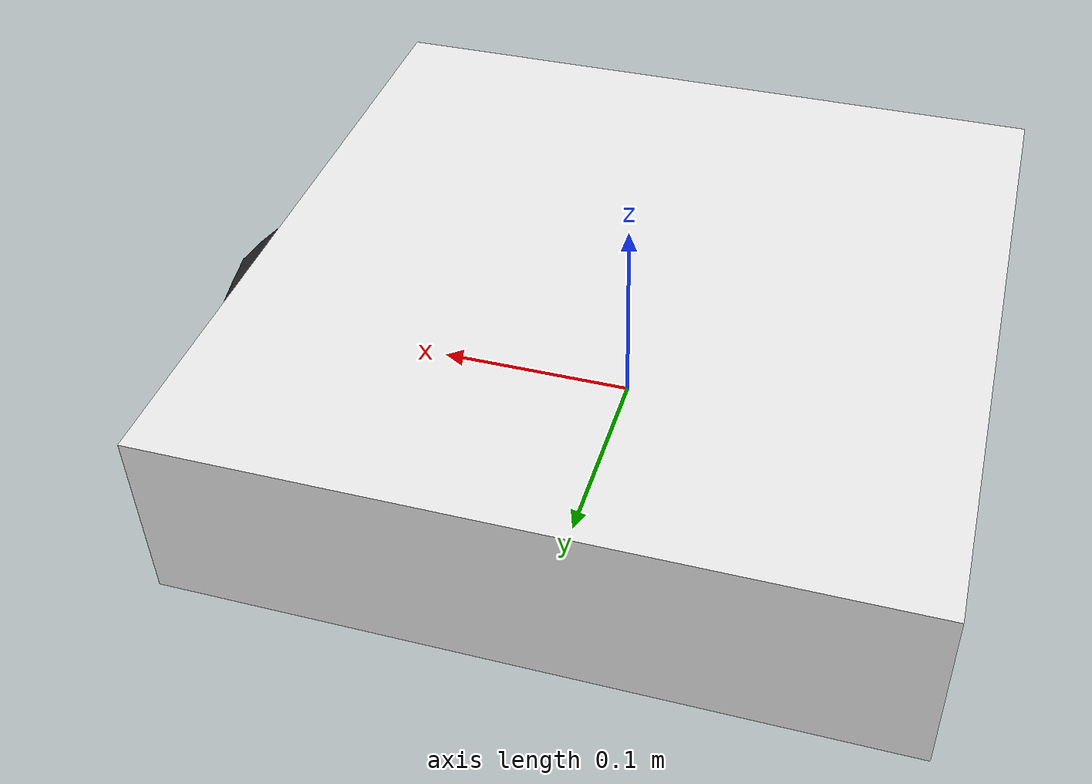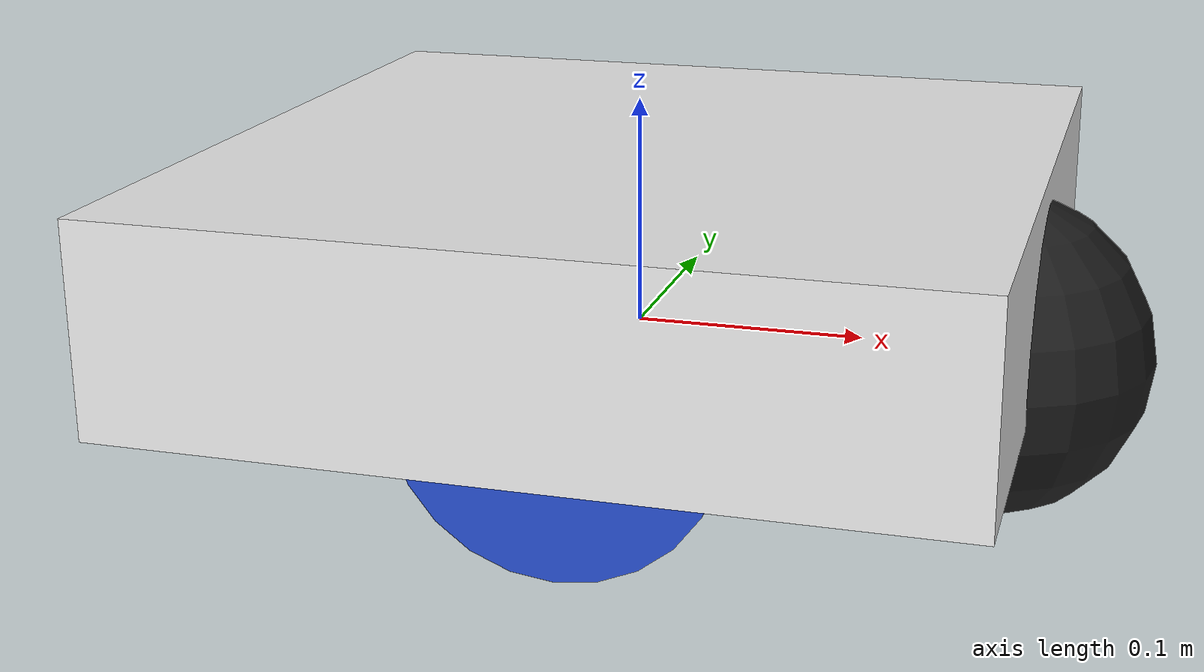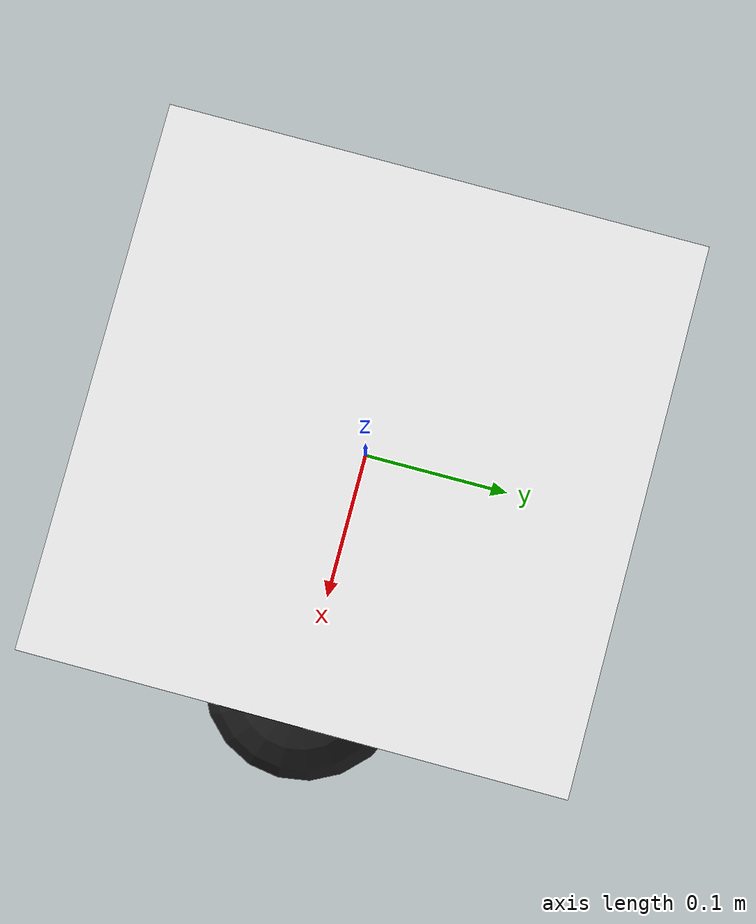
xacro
<?xml version="1.0"?>
<robot xmlns:xacro="http://www.ros.org/wiki/xacro">

  <xacro:include filename="../properties/core.xacro" />
  <xacro:include filename="../macros/inertial.xacro" />

  <!-- =========================== Robot core description =========================== -->
  <!-- ================== Base ================== -->
  <!-- ========= Link ========= -->
  <link name="base_link" />

  <!-- ================== Base footprint ================== -->
  <!-- ========= Link ========= -->
  <link name="base_footprint" />

  <!-- ========= Joint ========= -->
  <joint name="base_footprint_joint" type="fixed">
    <parent link="base_link" />
    <child link="base_footprint" />
  </joint>

  <!-- ================== Chassis ================== -->
  <!-- ========= Link ========= -->
  <link name="chassis">
    <visual>
      <origin xyz="${chassis_to_origin_offset_x} ${chassis_to_origin_offset_y} ${chassis_to_origin_offset_z}" />
      <geometry>
        <box size="${chassis_size_x} ${chassis_size_y} ${chassis_size_z}" />
      </geometry>
      <material name="${chassis_material}" />
    </visual>

    <collision>
      <origin xyz="${chassis_to_origin_offset_x} ${chassis_to_origin_offset_y} ${chassis_to_origin_offset_z}" />
      <geometry>
        <box size="${chassis_size_x} ${chassis_size_y} ${chassis_size_z}" />
      </geometry>
    </collision>

    <xacro:inertial_box
      mass="${chassis_mass}"
      x="${chassis_size_x}" y="${chassis_size_y}" z="${chassis_size_z}"
    >
      <xacro:inertial_origin xyz="${chassis_to_origin_offset_x} ${chassis_to_origin_offset_y} ${chassis_to_origin_offset_z}" />
    </xacro:inertial_box>
  </link>

  <!-- ========= Joint ========= -->
  <joint name="chassis_joint" type="fixed">
    <parent link="base_link" />
    <child link="chassis" />
    <origin xyz="${base_to_chassis_joint_x} ${base_to_chassis_joint_y} ${base_to_chassis_joint_z}" />
  </joint>

  <!-- ========= Gazebo ========= -->
  <gazebo reference="chassis">
    <material>${chassis_gazebo_material}</material>
  </gazebo>

  <!-- ================== Left wheel ================== -->
  <!-- ========= Link ========= -->
  <link name="left_wheel">
    <visual>
      <geometry>
        <cylinder radius="${left_wheel_size_xy}" length="${left_wheel_size_z}" />
      </geometry>
      <material name="${left_wheel_material}" />
    </visual>

    <collision>
      <geometry>
        <cylinder radius="${left_wheel_size_xy}" length="${left_wheel_size_z}" />
      </geometry>
    </collision>

    <xacro:inertial_cylinder
      mass="${left_wheel_mass}"
      radius="${left_wheel_size_xy}" length="${left_wheel_size_z}"
    >
      <xacro:inertial_origin />
    </xacro:inertial_cylinder>
  </link>

    <!-- ========= Joint ========= -->
  <joint name="left_wheel_joint" type="continuous">
    <parent link="base_link" />
    <child link="left_wheel" />
    <origin
      xyz="${base_to_left_wheel_joint_x} ${base_to_left_wheel_joint_y} ${base_to_left_wheel_joint_z}"
      rpy="${base_to_left_wheel_joint_roll} ${base_to_left_wheel_joint_pitch} ${base_to_left_wheel_joint_yaw}"
    />
    <axis xyz="${left_wheel_rotate_x} ${left_wheel_rotate_y} ${left_wheel_rotate_z}" />
  </joint>

  <!-- ========= Gazebo ========= -->
  <gazebo reference="left_wheel">
    <material>${left_wheel_gazebo_material}</material>
  </gazebo>

  <!-- ================== Right wheel ================== -->
  <!-- ========= Link ========= -->
  <link name="right_wheel">
    <visual>
      <geometry>
        <cylinder radius="${right_wheel_size_xy}" length="${right_wheel_size_z}" />
      </geometry>
      <material name="${right_wheel_material}" />
    </visual>

    <collision>
      <geometry>
        <cylinder radius="${right_wheel_size_xy}" length="${right_wheel_size_z}" />
      </geometry>
    </collision>

    <xacro:inertial_cylinder
      mass="${right_wheel_mass}"
      radius="${right_wheel_size_xy}" length="${right_wheel_size_z}"
    >
      <xacro:inertial_origin />
    </xacro:inertial_cylinder>
  </link>

  <!-- ========= Joint ========= -->
  <joint name="right_wheel_joint" type="continuous">
    <parent link="base_link" />
    <child link="right_wheel" />
    <origin
      xyz="${base_to_right_wheel_joint_x} ${base_to_right_wheel_joint_y} ${base_to_right_wheel_joint_z}"
      rpy="${base_to_right_wheel_joint_roll} ${base_to_right_wheel_joint_pitch} ${base_to_right_wheel_joint_yaw}"
    />
    <axis xyz="${right_wheel_rotate_x} ${right_wheel_rotate_y} ${right_wheel_rotate_z}" />
  </joint>

  <!-- ========= Gazebo ========= -->
  <gazebo reference="right_wheel">
    <material>${right_wheel_gazebo_material}</material>
  </gazebo>

  <!-- ================== Caster wheel ================== -->
  <!-- ========= Link ========= -->
  <link name="caster_wheel">
    <visual>
      <geometry>
        <sphere radius="${caster_wheel_size_xyz}" />
      </geometry>
      <material name="${caster_wheel_material}" />
    </visual>

    <collision>
      <geometry>
        <sphere radius="${caster_wheel_size_xyz}" />
      </geometry>
    </collision>

    <xacro:inertial_sphere
      mass="${caster_wheel_mass}"
      radius="${caster_wheel_size_xyz}"
    >
      <xacro:inertial_origin />
    </xacro:inertial_sphere>
  </link>

  <!-- ========= Joint ========= -->
  <joint name="caster_wheel_joint" type="fixed">
    <parent link="base_link" />
    <child link="caster_wheel" />
    <origin xyz="${base_to_caster_wheel_joint_x} ${base_to_caster_wheel_joint_y} ${base_to_caster_wheel_joint_z}" />
  </joint>

  <!-- ========= Gazebo ========= -->
  <gazebo reference="caster_wheel">
    <material>${caster_wheel_gazebo_material}</material>
    <mu1 value="0.001" />
    <mu2 value="0.001" />
  </gazebo>

</robot>

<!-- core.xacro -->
<robot xmlns:xacro="http://www.ros.org/wiki/xacro">

  <!-- =========================== Robot core properties =========================== -->
  <!-- ================== Chassis ================== -->
  <!-- ========= Dimensions ========= -->
  <xacro:property name="chassis_size_x" value="0.353" />
  <xacro:property name="chassis_size_y" value="0.350" />
  <xacro:property name="chassis_size_z" value="0.090" />

  <!-- ========= Origin ========= -->
  <xacro:property name="chassis_to_origin_offset_x" value="0" />
  <xacro:property name="chassis_to_origin_offset_y" value="0" />
  <xacro:property name="chassis_to_origin_offset_z" value="0" />

  <!-- ========= Joint offsets ========= -->
  <xacro:property name="base_to_chassis_joint_x" value="0" />
  <xacro:property name="base_to_chassis_joint_y" value="0" />
  <xacro:property name="base_to_chassis_joint_z" value="0.035" />

  <!-- ========= Material ========= -->
  <xacro:property name="chassis_material" value="white" />

  <!-- ========= Inertial ========= -->
  <xacro:property name="chassis_mass" value="2.0" />

  <!-- ========= Gazebo ========= -->
  <xacro:property name="chassis_gazebo_material" value="Gazebo/White" />

  <!-- ================== Left wheel ================== -->
  <!-- ========= Dimensions ========= -->
  <xacro:property name="left_wheel_size_xy" value="0.07" />
  <xacro:property name="left_wheel_size_z" value="0.014" />

  <!-- ========= Joint offsets ========= -->
  <xacro:property name="base_to_left_wheel_joint_x" value="0" />
  <xacro:property name="base_to_left_wheel_joint_y" value="0.1186" />
  <xacro:property name="base_to_left_wheel_joint_z" value="0" />

  <xacro:property name="base_to_left_wheel_joint_roll" value="${-pi / 2}" />
  <xacro:property name="base_to_left_wheel_joint_pitch" value="0" />
  <xacro:property name="base_to_left_wheel_joint_yaw" value="0" />

  <!-- ========= Axis of rotation ========= -->
  <xacro:property name="left_wheel_rotate_x" value="0" />
  <xacro:property name="left_wheel_rotate_y" value="0" />
  <xacro:property name="left_wheel_rotate_z" value="1" />

  <!-- ========= Material ========= -->
  <xacro:property name="left_wheel_material" value="blue" />

  <!-- ========= Inertial ========= -->
  <xacro:property name="left_wheel_mass" value="0.1" />

  <!-- ========= Gazebo ========= -->
  <xacro:property name="left_wheel_gazebo_material" value="Gazebo/Blue" />

  <!-- ================== Right wheel ================== -->
  <!-- ========= Dimensions ========= -->
  <xacro:property name="right_wheel_size_xy" value="${left_wheel_size_xy}" />
  <xacro:property name="right_wheel_size_z" value="${left_wheel_size_z}" />

  <!-- ========= Joint offsets ========= -->
  <xacro:property name="base_to_right_wheel_joint_x" value="${-base_to_left_wheel_joint_x}" />
  <xacro:property name="base_to_right_wheel_joint_y" value="${-base_to_left_wheel_joint_y}" />
  <xacro:property name="base_to_right_wheel_joint_z" value="${base_to_left_wheel_joint_z}" />
  <xacro:property name="base_to_right_wheel_joint_roll" value="${-base_to_left_wheel_joint_roll}" />
  <xacro:property name="base_to_right_wheel_joint_pitch" value="${base_to_left_wheel_joint_pitch}" />
  <xacro:property name="base_to_right_wheel_joint_yaw" value="${-base_to_left_wheel_joint_pitch}" />

  <!-- ========= Axis of rotation ========= -->
  <xacro:property name="right_wheel_rotate_x" value="${left_wheel_rotate_x}" />
  <xacro:property name="right_wheel_rotate_y" value="${left_wheel_rotate_y}" />
  <xacro:property name="right_wheel_rotate_z" value="-${left_wheel_rotate_z}" />

  <!-- ========= Material ========= -->
  <xacro:property name="right_wheel_material" value="${left_wheel_material}" />

  <!-- ========= Inertial ========= -->
  <xacro:property name="right_wheel_mass" value="${left_wheel_mass}" />

  <!-- ========= Gazebo ========= -->
  <xacro:property name="right_wheel_gazebo_material" value="${left_wheel_gazebo_material}" />

  <!-- ================== Caster wheel ================== -->
  <!-- ========= Dimensions ========= -->
  <xacro:property name="caster_wheel_size_xyz" value="0.07" />

  <!-- ========= Joint offsets ========= -->
  <xacro:property name="base_to_caster_wheel_joint_x" value="0.154" />
  <xacro:property name="base_to_caster_wheel_joint_y" value="0" />
  <xacro:property name="base_to_caster_wheel_joint_z" value="0" />

  <!-- ========= Material ========= -->
  <xacro:property name="caster_wheel_material" value="black" />

  <!-- ========= Inertial ========= -->
  <xacro:property name="caster_wheel_mass" value="0.1" />

  <!-- ========= Gazebo ========= -->
  <xacro:property name="caster_wheel_gazebo_material" value="Gazebo/Black" />

</robot>

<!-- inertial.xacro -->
<robot xmlns:xacro="http://www.ros.org/wiki/xacro" >

    <!-- Specify some standard inertial calculations https://en.wikipedia.org/wiki/List_of_moments_of_inertia -->
    <!-- These make use of xacro's mathematical functionality -->
    <!-- Unit of mass: kg -->

    <xacro:macro name="inertial_origin" params="xyz:='0 0 0' rpy:='0 0 0'">
      <origin xyz="${xyz}" rpy="${rpy}"/>
    </xacro:macro>

    <xacro:macro name="inertial_sphere" params="mass radius *origin">
      <inertial>
        <xacro:insert_block name="origin"/>
        <mass value="${mass}" />
        <inertia
          ixx="${(2/5) * mass * (radius*radius)}" ixy="0.0" ixz="0.0"
          iyy="${(2/5) * mass * (radius*radius)}" iyz="0.0"
          izz="${(2/5) * mass * (radius*radius)}"
        />
      </inertial>
    </xacro:macro>

    <xacro:macro name="inertial_box" params="mass x y z *origin">
      <inertial>
        <xacro:insert_block name="origin"/>
        <mass value="${mass}" />
        <inertia
          ixx="${(1/12) * mass * (y*y+z*z)}" ixy="0.0" ixz="0.0"
          iyy="${(1/12) * mass * (x*x+z*z)}" iyz="0.0"
          izz="${(1/12) * mass * (x*x+y*y)}"
        />
      </inertial>
    </xacro:macro>

    <xacro:macro name="inertial_cylinder" params="mass length radius *origin">
      <inertial>
        <xacro:insert_block name="origin"/>
        <mass value="${mass}" />
        <inertia
          ixx="${(1/12) * mass * (3*radius*radius + length*length)}" ixy="0.0" ixz="0.0"
          iyy="${(1/12) * mass * (3*radius*radius + length*length)}" iyz="0.0"
          izz="${(1/2) * mass * (radius*radius)}"
        />
      </inertial>
    </xacro:macro>

</robot>
